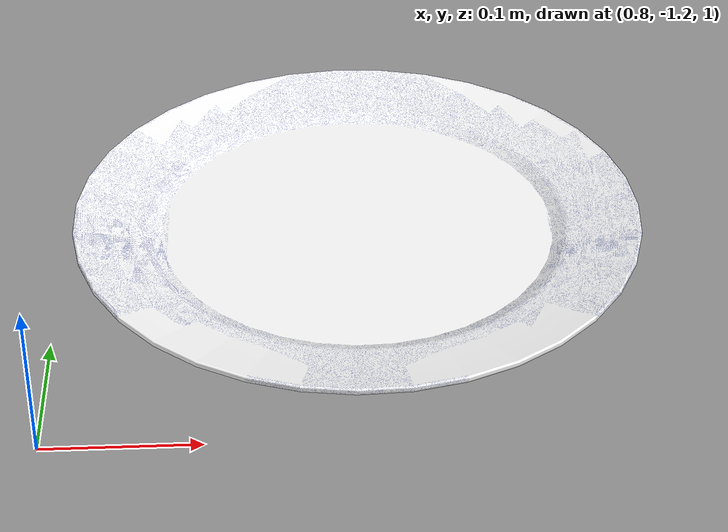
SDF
<?xml version="1.0" ?>
<sdf version="1.5">
  <model name="plate">
    <pose>1 -1 1 0 0 0</pose>
    <link name="link">
      <inertial>
	<mass>0.39</mass>
	<pose>0 0 0 0 0 0</pose>
        <inertia>
          <ixx>0.00055575</ixx>
          <ixy>0</ixy>
          <ixz>0</ixz>
          <iyy>0.00055575</iyy>
          <iyz>0</iyz>
          <izz>0.0001755</izz>
	</inertia>
      </inertial>
      <collision name="collision">
        <geometry>
          <mesh>
            <uri>model://plate/meshes/plate.dae</uri>
	    <scale> 0.2 0.2 0.2 </scale>
          </mesh>
        </geometry>
        <surface>
          <friction>
            <ode>
              <mu>1.0</mu>
              <mu2>1.0</mu2>
            </ode>
          </friction>
          <contact>
            <ode>
              <kp>10000000.0</kp>
              <kd>1.0</kd>
              <min_depth>0.001</min_depth>
              <max_vel>0.1</max_vel>
            </ode>
          </contact>
        </surface>
      </collision>
      <visual name="visual">
        <geometry>
          <mesh>
            <uri>model://plate/meshes/plate.dae</uri>
	    <scale> 0.2 0.2 0.2 </scale>
          </mesh>
        </geometry>
      </visual>
    </link>
  </model>
</sdf>
